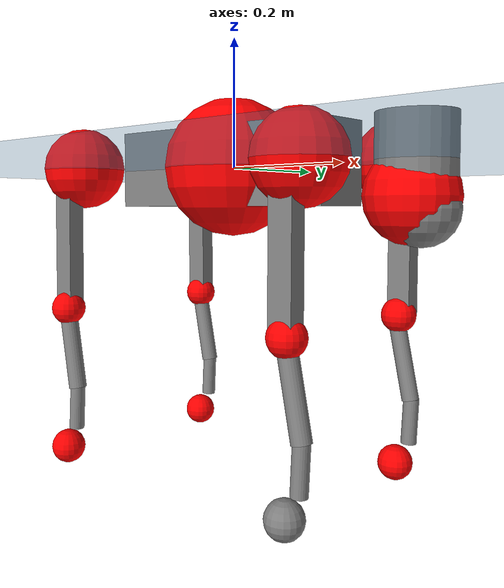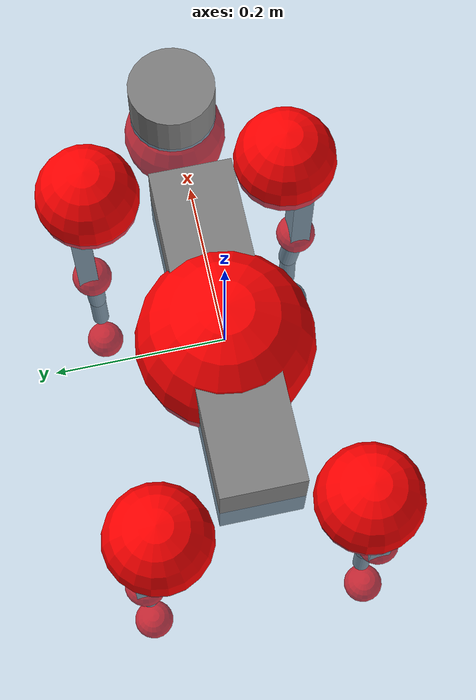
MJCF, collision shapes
<mujoco model="go2">
  <compiler angle="radian" assetdir="assets" balanceinertia="true" inertiafromgeom="false"/>

  <option timestep="0.005" density="1.2" viscosity="2e-05"/>

  <size nkey="1"/>

  <visual>
    <quality shadowsize="8192"/>
    <map shadowclip="0.5"/>
  </visual>

  <default>
    <default class="/">
      <geom contype="0" conaffinity="0" group="1" solref="-1000 -80"/>
      <site size="0.01 0.005 0.005" group="5"/>
      <general forcelimited="true" biastype="affine" gainprm="20" biasprm="0 -20 -0.5"/>
      <default class="go2">
        <joint armature="0.01" damping="0.01" frictionloss="0.2"/>
        <geom condim="1" margin="0.001"/>
        <default class="visual">
          <geom type="mesh" group="2"/>
        </default>
        <default class="collision">
          <geom group="3"/>
          <default class="foot">
            <geom size="0.022 0 0" condim="6" priority="1" friction="0.8 0.02 0.01" solimp="0.015 1 0.022"/>
          </default>
        </default>
        <default class="reward_collision_sphere">
          <geom group="5" rgba="1 0 0 1"/>
        </default>
      </default>
    </default>
  </default>

  <asset>
    <texture type="skybox" colorspace="auto" name="//unnamed_texture_0" builtin="gradient" rgb1="0.95 0.95 0.95" rgb2="0.95 0.95 0.95" width="100" height="600"/>
    <texture type="2d" colorspace="auto" name="texplane" builtin="checker" rgb1="0.345 0.575 0.748" rgb2="0.345 0.575 0.748" markrgb="1 1 1" width="512" height="512"/>
    <material name="MatPlane" class="/" texture="texplane" texuniform="true" texrepeat="2 2" specular="0.9"/>
    <material name="metal" class="/" rgba="0.9 0.95 0.95 1"/>
    <material name="black" class="/" rgba="0 0 0 1"/>
    <material name="white" class="/"/>
    <material name="gray" class="/" rgba="0.671705 0.692426 0.77427 1"/>
    <mesh name="base_0" class="/" file="base_0.obj"/>
    <mesh name="base_1" class="/" file="base_1.obj"/>
    <mesh name="base_2" class="/" file="base_2.obj"/>
    <mesh name="base_3" class="/" file="base_3.obj"/>
    <mesh name="base_4" class="/" file="base_4.obj"/>
    <mesh name="hip_0" class="/" file="hip_0.obj"/>
    <mesh name="hip_1" class="/" file="hip_1.obj"/>
    <mesh name="thigh_0" class="/" file="thigh_0.obj"/>
    <mesh name="thigh_1" class="/" file="thigh_1.obj"/>
    <mesh name="thigh_mirror_0" class="/" file="thigh_mirror_0.obj"/>
    <mesh name="thigh_mirror_1" class="/" file="thigh_mirror_1.obj"/>
    <mesh name="calf_0" class="/" file="calf_0.obj"/>
    <mesh name="calf_1" class="/" file="calf_1.obj"/>
    <mesh name="calf_mirror_0" class="/" file="calf_mirror_0.obj"/>
    <mesh name="calf_mirror_1" class="/" file="calf_mirror_1.obj"/>
    <mesh name="foot" class="/" file="foot.obj"/>
  </asset>

  <worldbody>
    <geom name="floor" class="/" size="100 100 0.125" type="plane" group="0" material="MatPlane"/>
    <light name="toplight_shadow" class="/" pos="0 0 5" dir="0.0990148 0.0990148 -0.990148" type="directional" ambient="0.04 0.04 0.04" diffuse="0.55 0.55 0.55" specular="0.12 0.12 0.12"/>
    <light name="toplight_fill" class="/" pos="0 0 5" dir="0.0990148 0.0990148 -0.990148" type="directional" castshadow="false" ambient="0.04 0.04 0.04" diffuse="0.3 0.3 0.3" specular="0.08 0.08 0.08"/>
    <body name="trunk" childclass="go2" pos="-0.00167359 -0.000720312 0.000863549" quat="1 2.69112e-05 3.3995e-05 -1.49641e-05">
      <inertial pos="0.0311088 0.00492133 -0.00598332" quat="0.00843775 0.713655 0.00192428 0.700444" mass="7.9834" diaginertia="0.173803 0.119749 0.0372365"/>
      <joint name="//unnamed_joint_0" type="free" armature="0" damping="0" frictionloss="0"/>
      <geom name="//unnamed_geom_1" class="visual" material="black" mesh="base_0"/>
      <geom name="//unnamed_geom_2" class="visual" material="black" mesh="base_1"/>
      <geom name="//unnamed_geom_3" class="visual" material="black" mesh="base_2"/>
      <geom name="//unnamed_geom_4" class="visual" material="white" mesh="base_3"/>
      <geom name="//unnamed_geom_5" class="visual" material="gray" mesh="base_4"/>
      <geom name="trunk_1" class="collision" size="0.201474 0.0500739 0.0610527" type="box"/>
      <geom name="trunk_2" class="collision" size="0.053555 0.0481995" pos="0.313039 0 0.010772" type="cylinder"/>
      <geom name="trunk_3" class="collision" size="0.0503417" pos="0.321826 0 -0.0646319"/>
      <geom name="//unnamed_geom_9" class="reward_collision_sphere" size="0.10711"/>
      <geom name="//unnamed_geom_10" class="reward_collision_sphere" size="0.064266" pos="0.307547 0 -0.0484739"/>
      <site name="imu" pos="-0.0584624 -0.000871392 0.0756962" size="0.010711"/>
      <camera name="track" pos="0 -2.07543 0" quat="0.707107 0.707107 0 0" mode="trackcom"/>
      <camera name="ego_camera" pos="0.342695 0 0.0484739" quat="-0.5 -0.5 0.5 0.5"/>
      <body name="FL_hip" pos="0.216027 0.0524587 0.00401501" quat="0.999999 -0.000330018 -0.00102417 -0.000561847">
        <inertial pos="-0.00616242 0.00544488 -0.00204754" quat="0.49722 0.497252 0.507198 0.49826" mass="0.907301" diaginertia="0.0015618 0.000829158 0.000758496"/>
        <joint name="FL_hip_joint" pos="0 0 0" axis="0.99999 0.00339778 0.00292692" stiffness="0.0119248" range="-1.0511 1.05151" armature="0.0114355" damping="0" frictionloss="0.239649"/>
        <geom name="//unnamed_geom_11" class="visual" material="metal" mesh="hip_0"/>
        <geom name="//unnamed_geom_12" class="visual" material="gray" mesh="hip_1"/>
        <geom name="//unnamed_geom_13" class="collision" size="0.0492706 0.021422" pos="0 0.0830174 0" quat="0.707107 0.707107 0 0" type="cylinder"/>
        <geom name="//unnamed_geom_14" class="reward_collision_sphere" size="0.064266" pos="0 0.0726402 0"/>
        <body name="FL_thigh" pos="0.00127917 0.0923112 -0.00120485" quat="0.999996 -0.000200779 0.00234797 -0.00146422">
          <inertial pos="-0.00256847 -0.0233957 -0.0363055" quat="0.83471 0.0822672 -0.00407829 0.544495" mass="1.42618" diaginertia="0.0093253 0.00746985 0.00126132"/>
          <joint name="FL_thigh_joint" pos="0 0 0" axis="-0.0068862 0.999974 -0.00205022" range="-1.67293 3.44523" armature="0.00987546" damping="0" frictionloss="0.228069"/>
          <geom name="//unnamed_geom_15" class="visual" material="metal" mesh="thigh_0"/>
          <geom name="//unnamed_geom_16" class="visual" material="gray" mesh="thigh_1"/>
          <geom name="//unnamed_geom_17" class="collision" size="0.114072 0.013121 0.0182087" pos="0 0 -0.114722" quat="0.707107 0 0.707107 0" type="box"/>
          <body name="FL_calf" pos="-0.00239845 -0.00538085 -0.229495" quat="1 0.000218056 0.000759658 0.000399048">
            <inertial pos="0.00681909 0.00149175 -0.151698" quat="0.71128 0.00453199 -0.00343351 0.702886" mass="0.287567" diaginertia="0.00244521 0.00175926 7.68635e-05"/>
            <joint name="FL_calf_joint" pos="0 0 0" axis="0.00244771 0.999981 0.00573947" stiffness="0.0239591" range="-2.76672 -0.829018" armature="0.0112057" damping="0.0131325" frictionloss="0.218908"/>
            <geom name="//unnamed_geom_18" class="visual" material="gray" mesh="calf_0"/>
            <geom name="//unnamed_geom_19" class="visual" material="black" mesh="calf_1"/>
            <geom name="FL_calf0" class="collision" size="0.0128532 0.064266" pos="0.00878706 0 -0.0646319" quat="0.994493 0 -0.104807 0" type="cylinder"/>
            <geom name="//unnamed_geom_21" class="collision" size="0.0117821 0.0348107" pos="0.0219676 0 -0.159425" quat="0.999688 0 0.0249974 0" type="cylinder"/>
            <geom name="//unnamed_geom_22" class="visual" pos="0 0 -0.229443" quat="1 0 0 0" material="black" mesh="foot"/>
            <geom name="FL_foot" class="foot" size="0.0233157" pos="-0.00219676 0 -0.229443"/>
            <geom name="//unnamed_geom_24" class="reward_collision_sphere" size="0.0267775"/>
            <geom name="//unnamed_geom_25" class="reward_collision_sphere" size="0.0267775" pos="-0.00219676 0 -0.229443"/>
            <site name="FL_foot" class="foot" pos="-0.00219676 0 -0.229443" size="0.010711"/>
          </body>
        </body>
      </body>
      <body name="FR_hip" pos="0.218783 -0.0491499 -0.00116068" quat="1 9.26825e-05 -1.27562e-05 0.000183343">
        <inertial pos="-0.00398307 0.00623081 0.00206161" quat="0.498549 0.534011 0.484992 0.48069" mass="0.834904" diaginertia="0.00152358 0.000682544 0.000745612"/>
        <joint name="FR_hip_joint" pos="0 0 0" axis="0.999776 -0.0158383 -0.0140102" stiffness="0.00611684" range="-1.00204 1.05918" armature="0.0102189" damping="0.0255309" frictionloss="0.22137"/>
        <geom name="//unnamed_geom_26" class="visual" pos="0 -3.43949e-10 -1.47527e-08" quat="4.63268e-05 1 0 0" material="metal" mesh="hip_0"/>
        <geom name="//unnamed_geom_27" class="visual" pos="0 -5.57583e-10 3.64891e-08" quat="4.63268e-05 1 0 0" material="gray" mesh="hip_1"/>
        <geom name="//unnamed_geom_28" class="collision" size="0.0492706 0.021422" pos="0 -0.0830174 0" quat="0.707107 0.707107 0 0" type="cylinder"/>
        <geom name="//unnamed_geom_29" class="reward_collision_sphere" size="0.064266" pos="0 -0.0726402 0"/>
        <body name="FR_thigh" pos="-0.00111573 -0.0976872 0.00509312" quat="0.999997 -0.000347275 0.00145587 -0.00176308">
          <inertial pos="-0.0104245 0.021986 -0.0338503" quat="0.548497 -0.0259408 0.0881484 0.831089" mass="1.31281" diaginertia="0.00948706 0.0072204 0.00114551"/>
          <joint name="FR_thigh_joint" pos="0 0 0" axis="0.00162858 -0.999998 -0.000882652" range="-3.47358 1.52681" armature="0.0117703" damping="0" frictionloss="0.216258"/>
          <geom name="//unnamed_geom_30" class="visual" material="metal" mesh="thigh_mirror_0"/>
          <geom name="//unnamed_geom_31" class="visual" material="gray" mesh="thigh_mirror_1"/>
          <geom name="//unnamed_geom_32" class="collision" size="0.114072 0.013121 0.0182087" pos="0 0 -0.114722" quat="0.707107 0 0.707107 0" type="box"/>
          <body name="FR_calf" pos="0.00125437 0.00138328 -0.227454" quat="1 0.000125528 -0.00066394 0.000145166">
            <inertial pos="0.0104902 0.000881349 -0.153423" quat="0.701698 0.0259543 0.0185777 0.711759" mass="0.277436" diaginertia="0.00227752 0.0016823 7.3061e-05"/>
            <joint name="FR_calf_joint" pos="0 0 0" axis="0.0190868 -0.999817 -0.000841755" stiffness="0.0302384" range="0.964845 2.75376" armature="0.00841029" damping="0" frictionloss="0.212911"/>
            <geom name="//unnamed_geom_33" class="visual" material="gray" mesh="calf_mirror_0"/>
            <geom name="//unnamed_geom_34" class="visual" material="black" mesh="calf_mirror_1"/>
            <geom name="FR_calf0" class="collision" size="0.0139243 0.064266" pos="0.0109838 0 -0.0646319" quat="0.995004 0 -0.0998334 0" type="cylinder"/>
            <geom name="//unnamed_geom_36" class="collision" size="0.0117821 0.0348107" pos="0.0219676 0 -0.159425" quat="0.999688 0 0.0249974 0" type="cylinder"/>
            <geom name="//unnamed_geom_37" class="visual" pos="0 0 -0.229443" quat="1 0 0 0" material="black" mesh="foot"/>
            <geom name="FR_foot" class="foot" size="0.0270344" pos="-0.00219676 0 -0.229443"/>
            <geom name="//unnamed_geom_39" class="reward_collision_sphere" size="0.0267775"/>
            <geom name="//unnamed_geom_40" class="reward_collision_sphere" size="0.0267775" pos="-0.00219676 0 -0.229443"/>
            <site name="FR_foot" class="foot" pos="-0.00219676 0 -0.229443" size="0.010711"/>
          </body>
        </body>
      </body>
      <body name="RL_hip" pos="-0.217585 0.0506907 0.00536944" quat="1 0.000642435 -0.00024165 0.000604262">
        <inertial pos="0.00657814 -0.000439686 0.00723244" quat="0.504844 0.489368 0.489964 0.515351" mass="0.765812" diaginertia="0.00116578 0.000643351 0.000648034"/>
        <joint name="RL_hip_joint" pos="0 0 0" axis="-0.999806 -0.0151618 -0.0125381" stiffness="0.000936422" range="-1.05082 1.06314" armature="0.00931911" damping="0.0373123" frictionloss="0.214402"/>
        <geom name="//unnamed_geom_41" class="visual" pos="-1.84541e-10 0 -3.61743e-08" quat="4.63268e-05 0 1 0" material="metal" mesh="hip_0"/>
        <geom name="//unnamed_geom_42" class="visual" pos="-2.99163e-10 0 -3.20815e-08" quat="4.63268e-05 0 1 0" material="gray" mesh="hip_1"/>
        <geom name="//unnamed_geom_43" class="collision" size="0.0492706 0.021422" pos="0 0.0830174 0" quat="0.707107 0.707107 0 0" type="cylinder"/>
        <geom name="//unnamed_geom_44" class="reward_collision_sphere" size="0.064266" pos="0 0.0726402 0"/>
        <body name="RL_thigh" pos="0.000294363 0.0983341 -0.000931592" quat="1 4.45171e-05 -0.000189585 0.000211722">
          <inertial pos="0.00383148 -0.0221205 -0.0284585" quat="0.829679 0.0853845 -0.0197365 0.55132" mass="1.45906" diaginertia="0.0107542 0.00702377 0.00132942"/>
          <joint name="RL_thigh_joint" pos="0 0 0" axis="0.0211557 0.999665 0.0148843" range="-0.50901 4.58406" armature="0.0118484" damping="0.0254837" frictionloss="0.221289"/>
          <geom name="//unnamed_geom_45" class="visual" material="metal" mesh="thigh_0"/>
          <geom name="//unnamed_geom_46" class="visual" material="gray" mesh="thigh_1"/>
          <geom name="//unnamed_geom_47" class="collision" size="0.114072 0.013121 0.0182087" pos="0 0 -0.114722" quat="0.707107 0 0.707107 0" type="box"/>
          <body name="RL_calf" pos="3.57551e-05 -0.000456652 -0.229637" quat="1 -0.000529106 -1.00437e-05 -0.000525436">
            <inertial pos="0.00615236 -0.00586429 -0.153447" quat="0.713642 0.00372336 0.00384618 0.70049" mass="0.268464" diaginertia="0.00220701 0.00148565 7.0362e-05"/>
            <joint name="RL_calf_joint" pos="0 0 0" axis="-0.00267403 0.999881 0.0151945" range="-2.81986 -0.783209" armature="0.0074847" damping="0" frictionloss="0.260791"/>
            <geom name="//unnamed_geom_48" class="visual" material="gray" mesh="calf_0"/>
            <geom name="//unnamed_geom_49" class="visual" material="black" mesh="calf_1"/>
            <geom name="RL_calf0" class="collision" size="0.0139243 0.064266" pos="0.0109838 0 -0.0646319" quat="0.995004 0 -0.0998334 0" type="cylinder"/>
            <geom name="//unnamed_geom_51" class="collision" size="0.0117821 0.0348107" pos="0.0219676 0 -0.159425" quat="0.999688 0 0.0249974 0" type="cylinder"/>
            <geom name="//unnamed_geom_52" class="visual" pos="0 0 -0.229443" quat="1 0 0 0" material="black" mesh="foot"/>
            <geom name="RL_foot" class="foot" size="0.0219344" pos="-0.00219676 0 -0.229443"/>
            <geom name="//unnamed_geom_54" class="reward_collision_sphere" size="0.0267775"/>
            <geom name="//unnamed_geom_55" class="reward_collision_sphere" size="0.0267775" pos="-0.00219676 0 -0.229443"/>
            <site name="RL_foot" class="foot" pos="-0.00219676 0 -0.229443" size="0.010711"/>
          </body>
        </body>
      </body>
      <body name="RR_hip" pos="-0.220394 -0.0463603 0.000163461" quat="0.999999 -0.000851395 0.000834598 0.000519252">
        <inertial pos="0.00752486 -0.00299693 0.00648373" quat="0.500016 0.528485 0.472626 0.497306" mass="0.862752" diaginertia="0.0015337 0.000789417 0.00076861"/>
        <joint name="RR_hip_joint" pos="0 0 0" axis="-0.999566 -0.0264461 0.0129555" stiffness="0.00608026" range="-0.939647 1.03054" armature="0.0105011" damping="0.0137326" frictionloss="0.212172"/>
        <geom name="//unnamed_geom_56" class="visual" pos="1.82441e-10 -3.43949e-10 -2.14216e-08" quat="2.14617e-09 4.63268e-05 4.63268e-05 -1" material="metal" mesh="hip_0"/>
        <geom name="//unnamed_geom_57" class="visual" pos="3.04358e-10 -5.57583e-10 -6.85705e-08" quat="2.14617e-09 4.63268e-05 4.63268e-05 -1" material="gray" mesh="hip_1"/>
        <geom name="//unnamed_geom_58" class="collision" size="0.0492706 0.021422" pos="0 -0.0830174 0" quat="0.707107 0.707107 0 0" type="cylinder"/>
        <geom name="//unnamed_geom_59" class="reward_collision_sphere" size="0.064266" pos="0 -0.0726402 0"/>
        <body name="RR_thigh" pos="-0.00690475 -0.0991331 0.00547122" quat="0.999997 0.00114653 0.00148863 0.00146704">
          <inertial pos="-0.00326507 0.0216989 -0.03337" quat="0.549699 -0.0217347 0.0825925 0.830986" mass="1.51085" diaginertia="0.010163 0.00701482 0.00126863"/>
          <joint name="RR_thigh_joint" pos="0 0 0" axis="0.00589192 -0.999976 0.00363171" range="-4.56928 0.498233" armature="0.00952474" damping="0.00475729" frictionloss="0.218704"/>
          <geom name="//unnamed_geom_60" class="visual" material="metal" mesh="thigh_mirror_0"/>
          <geom name="//unnamed_geom_61" class="visual" material="gray" mesh="thigh_mirror_1"/>
          <geom name="//unnamed_geom_62" class="collision" size="0.114072 0.013121 0.0182087" pos="0 0 -0.114722" quat="0.707107 0 0.707107 0" type="box"/>
          <body name="RR_calf" pos="0.00204034 -0.00472316 -0.232333" quat="0.999995 -0.0014581 0.00165152 -0.00214708">
            <inertial pos="0.00276043 0.000809811 -0.150834" quat="0.709118 -0.0132886 -0.0116825 0.704868" mass="0.286741" diaginertia="0.00237111 0.00175821 7.68582e-05"/>
            <joint name="RR_calf_joint" pos="0 0 0" axis="0.00228225 -0.999994 0.00252811" stiffness="0.00722326" range="0.819614 2.61102" armature="0.0104695" damping="0" frictionloss="0.213528"/>
            <geom name="//unnamed_geom_63" class="visual" material="gray" mesh="calf_mirror_0"/>
            <geom name="//unnamed_geom_64" class="visual" material="black" mesh="calf_mirror_1"/>
            <geom name="RR_calf0" class="collision" size="0.0139243 0.064266" pos="0.0109838 0 -0.0646319" quat="0.995004 0 -0.0998334 0" type="cylinder"/>
            <geom name="//unnamed_geom_66" class="collision" size="0.0117821 0.0348107" pos="0.0219676 0 -0.159425" quat="0.999688 0 0.0249974 0" type="cylinder"/>
            <geom name="//unnamed_geom_67" class="visual" pos="0 0 -0.229443" quat="1 0 0 0" material="black" mesh="foot"/>
            <geom name="RR_foot" class="foot" size="0.0260631" pos="-0.00219676 0 -0.229443"/>
            <geom name="//unnamed_geom_69" class="reward_collision_sphere" size="0.0267775"/>
            <geom name="//unnamed_geom_70" class="reward_collision_sphere" size="0.0267775" pos="-0.00219676 0 -0.229443"/>
            <site name="RR_foot" class="foot" pos="-0.00219676 0 -0.229443" size="0.010711"/>
          </body>
        </body>
      </body>
    </body>
  </worldbody>

  <contact>
    <pair class="/" geom1="floor" geom2="FL_foot" name="//unnamed_contact_0"/>
    <pair class="/" geom1="floor" geom2="FR_foot" name="//unnamed_contact_1"/>
    <pair class="/" geom1="floor" geom2="RL_foot" name="//unnamed_contact_2"/>
    <pair class="/" geom1="floor" geom2="RR_foot" name="//unnamed_contact_3"/>
  </contact>

  <actuator>
    <general name="FL_hip" class="/" joint="FL_hip_joint" forcerange="-28.8994 28.8994" gainprm="22.1427" biasprm="0 -22.1427 -0.552132"/>
    <general name="FL_thigh" class="/" joint="FL_thigh_joint" forcerange="-31.6784 31.6784" gainprm="22.1427" biasprm="0 -22.1427 -0.552132"/>
    <general name="FL_calf" class="/" joint="FL_calf_joint" forcerange="-46.9214 46.9214" gainprm="22.1427" biasprm="0 -22.1427 -0.552132"/>
    <general name="FR_hip" class="/" joint="FR_hip_joint" forcerange="-26.2543 26.2543" gainprm="22.1427" biasprm="0 -22.1427 -0.552132"/>
    <general name="FR_thigh" class="/" joint="FR_thigh_joint" forcerange="-22.7084 22.7084" gainprm="22.1427" biasprm="0 -22.1427 -0.552132"/>
    <general name="FR_calf" class="/" joint="FR_calf_joint" forcerange="-44.7169 44.7169" gainprm="22.1427" biasprm="0 -22.1427 -0.552132"/>
    <general name="RL_hip" class="/" joint="RL_hip_joint" forcerange="-25.6772 25.6772" gainprm="22.1427" biasprm="0 -22.1427 -0.552132"/>
    <general name="RL_thigh" class="/" joint="RL_thigh_joint" forcerange="-28.416 28.416" gainprm="22.1427" biasprm="0 -22.1427 -0.552132"/>
    <general name="RL_calf" class="/" joint="RL_calf_joint" forcerange="-49.9458 49.9458" gainprm="22.1427" biasprm="0 -22.1427 -0.552132"/>
    <general name="RR_hip" class="/" joint="RR_hip_joint" forcerange="-23.2878 23.2878" gainprm="22.1427" biasprm="0 -22.1427 -0.552132"/>
    <general name="RR_thigh" class="/" joint="RR_thigh_joint" forcerange="-20.7463 20.7463" gainprm="22.1427" biasprm="0 -22.1427 -0.552132"/>
    <general name="RR_calf" class="/" joint="RR_calf_joint" forcerange="-52.501 52.501" gainprm="22.1427" biasprm="0 -22.1427 -0.552132"/>
  </actuator>

  <sensor>
    <gyro site="imu" name="imu_angular_velocity"/>
    <velocimeter site="imu" name="imu_linear_velocity"/>
    <framelinvel objtype="site" objname="FL_foot" name="FL_foot_global_linear_velocity"/>
    <framelinvel objtype="site" objname="FR_foot" name="FR_foot_global_linear_velocity"/>
    <framelinvel objtype="site" objname="RL_foot" name="RL_foot_global_linear_velocity"/>
    <framelinvel objtype="site" objname="RR_foot" name="RR_foot_global_linear_velocity"/>
  </sensor>

  <keyframe>
    <key name="home" qpos="0 0 0.325 1 0 0 0 0.1 0.8 -1.5 -0.1 -0.8 1.5 -0.1 0.8 -1.5 0.1 -0.8 1.5"/>
  </keyframe>
</mujoco>
